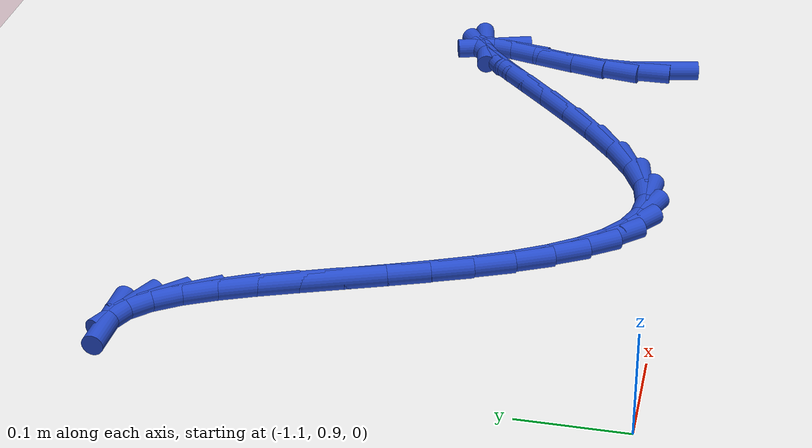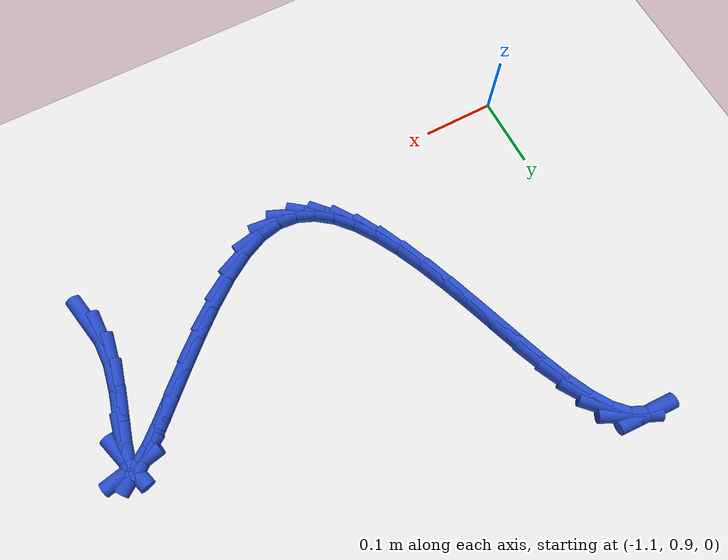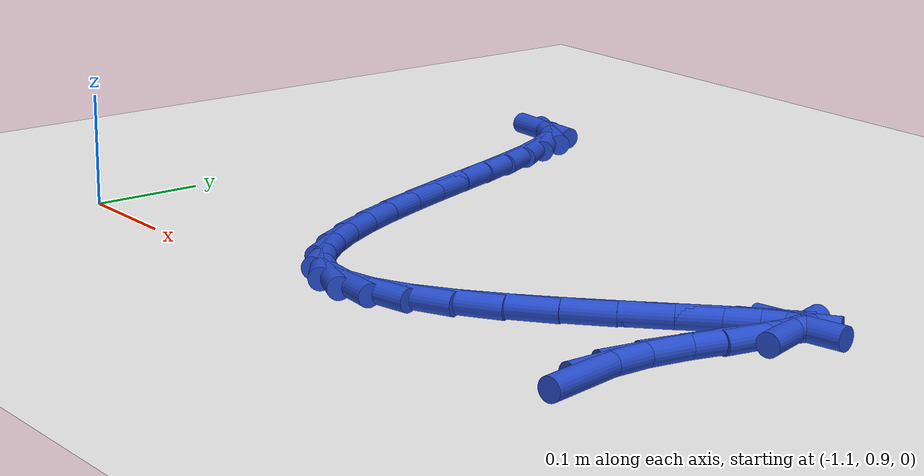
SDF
<sdf version="1.6">
 <world name="default">
  <model name="ground_plane">
   <static>1</static>
   <link name="link">
    <collision name="collision">
     <geometry><plane><normal>0 0 1</normal><size>100 100</size></plane></geometry>
     <surface><friction><ode><mu>100</mu><mu2>50</mu2></ode></friction></surface>
    </collision>
    <visual name="visual">
     <cast_shadows>0</cast_shadows>
     <geometry><plane><normal>0 0 1</normal><size>100 100</size></plane></geometry>
     <material>
      <script><uri>file://media/materials/scripts/gazebo.material</uri><name>Gazebo/WhiteGlow</name></script>
     </material>
    </visual>
   </link>
  </model>
  <model name="line">
   <link name="link_37">
    <pose>-0.4770495984323062 0.9430570257914278 0.01 0 1.57 -1.364512986633252</pose>
    <collision name="collision">
     <geometry><cylinder><radius>0.01</radius><length>0.08</length></cylinder></geometry>
    </collision>
    <visual name="visual">
     <material>
      <script><name>Gazebo/Blue</name><uri>file://media/materials/scripts/gazebo.material</uri></script>
     </material>
     <geometry><cylinder><radius>0.01</radius><length>0.08</length></cylinder></geometry>
    </visual>
   </link>
   <link name="link_38">
    <pose>-0.4831788865735521 0.9723473262441882 0.01 0 1.57 -1.5704683569661182</pose>
    <collision name="collision">
     <geometry><cylinder><radius>0.01</radius><length>0.08</length></cylinder></geometry>
    </collision>
    <visual name="visual">
     <material>
      <script><name>Gazebo/Blue</name><uri>file://media/materials/scripts/gazebo.material</uri></script>
     </material>
     <geometry><cylinder><radius>0.01</radius><length>0.08</length></cylinder></geometry>
    </visual>
   </link>
   <link name="link_39">
    <pose>-0.4831896345588908 1.005118587531682 0.01 0 1.57 1.4116530401254945</pose>
    <collision name="collision">
     <geometry><cylinder><radius>0.01</radius><length>0.08</length></cylinder></geometry>
    </collision>
    <visual name="visual">
     <material>
      <script><name>Gazebo/Blue</name><uri>file://media/materials/scripts/gazebo.material</uri></script>
     </material>
     <geometry><cylinder><radius>0.01</radius><length>0.08</length></cylinder></geometry>
    </visual>
   </link>
   <link name="link_40">
    <pose>-0.47749367470440174 1.0406073108091247 0.01 0 1.57 1.33227171243182</pose>
    <collision name="collision">
     <geometry><cylinder><radius>0.01</radius><length>0.08</length></cylinder></geometry>
    </collision>
    <visual name="visual">
     <material>
      <script><name>Gazebo/Blue</name><uri>file://media/materials/scripts/gazebo.material</uri></script>
     </material>
     <geometry><cylinder><radius>0.01</radius><length>0.08</length></cylinder></geometry>
    </visual>
   </link>
   <link name="link_41">
    <pose>-0.46905250509312907 1.0753227014718703 0.01 0 1.57 1.3153170209641836</pose>
    <collision name="collision">
     <geometry><cylinder><radius>0.01</radius><length>0.08</length></cylinder></geometry>
    </collision>
    <visual name="visual">
     <material>
      <script><name>Gazebo/Blue</name><uri>file://media/materials/scripts/gazebo.material</uri></script>
     </material>
     <geometry><cylinder><radius>0.01</radius><length>0.08</length></cylinder></geometry>
    </visual>
   </link>
   <link name="link_42">
    <pose>-0.46120426765963307 1.1053710810578947 0.01 0 1.57 1.3904783841975357</pose>
    <collision name="collision">
     <geometry><cylinder><radius>0.01</radius><length>0.08</length></cylinder></geometry>
    </collision>
    <visual name="visual">
     <material>
      <script><name>Gazebo/Blue</name><uri>file://media/materials/scripts/gazebo.material</uri></script>
     </material>
     <geometry><cylinder><radius>0.01</radius><length>0.08</length></cylinder></geometry>
    </visual>
   </link>
   <link name="link_43">
    <pose>-0.4572871043384739 1.1268587711051745 0.01 0 1.57 -1.2693166915440863</pose>
    <collision name="collision">
     <geometry><cylinder><radius>0.01</radius><length>0.08</length></cylinder></geometry>
    </collision>
    <visual name="visual">
     <material>
      <script><name>Gazebo/Blue</name><uri>file://media/materials/scripts/gazebo.material</uri></script>
     </material>
     <geometry><cylinder><radius>0.01</radius><length>0.08</length></cylinder></geometry>
    </visual>
   </link>
   <link name="link_44">
    <pose>-0.4602591427514989 1.1364164489141484 0.01 0 1.57 0.19368764389536142</pose>
    <collision name="collision">
     <geometry><cylinder><radius>0.01</radius><length>0.08</length></cylinder></geometry>
    </collision>
    <visual name="visual">
     <material>
      <script><name>Gazebo/Blue</name><uri>file://media/materials/scripts/gazebo.material</uri></script>
     </material>
     <geometry><cylinder><radius>0.01</radius><length>0.08</length></cylinder></geometry>
    </visual>
   </link>
   <link name="link_45">
    <pose>-0.47035212502581486 1.1344367446829082 0.01 0 1.57 0.6149706926015445</pose>
    <collision name="collision">
     <geometry><cylinder><radius>0.01</radius><length>0.08</length></cylinder></geometry>
    </collision>
    <visual name="visual">
     <material>
      <script><name>Gazebo/Blue</name><uri>file://media/materials/scripts/gazebo.material</uri></script>
     </material>
     <geometry><cylinder><radius>0.01</radius><length>0.08</length></cylinder></geometry>
    </visual>
   </link>
   <link name="link_46">
    <pose>-0.4866072434327489 1.1229550469386202 0.01 0 1.57 0.7232912617935959</pose>
    <collision name="collision">
     <geometry><cylinder><radius>0.01</radius><length>0.08</length></cylinder></geometry>
    </collision>
    <visual name="visual">
     <material>
      <script><name>Gazebo/Blue</name><uri>file://media/materials/scripts/gazebo.material</uri></script>
     </material>
     <geometry><cylinder><radius>0.01</radius><length>0.08</length></cylinder></geometry>
    </visual>
   </link>
   <link name="link_47">
    <pose>-0.5080607159211911 1.1040136079358085 0.01 0 1.57 0.7588470234525712</pose>
    <collision name="collision">
     <geometry><cylinder><radius>0.01</radius><length>0.08</length></cylinder></geometry>
    </collision>
    <visual name="visual">
     <material>
      <script><name>Gazebo/Blue</name><uri>file://media/materials/scripts/gazebo.material</uri></script>
     </material>
     <geometry><cylinder><radius>0.01</radius><length>0.08</length></cylinder></geometry>
    </visual>
   </link>
   <link name="link_48">
    <pose>-0.5337487604400319 1.0796546799289954 0.01 0 1.57 0.7637997417366655</pose>
    <collision name="collision">
     <geometry><cylinder><radius>0.01</radius><length>0.08</length></cylinder></geometry>
    </collision>
    <visual name="visual">
     <material>
      <script><name>Gazebo/Blue</name><uri>file://media/materials/scripts/gazebo.material</uri></script>
     </material>
     <geometry><cylinder><radius>0.01</radius><length>0.08</length></cylinder></geometry>
    </visual>
   </link>
   <link name="link_49">
    <pose>-0.5627075949381609 1.0519205151727054 0.01 0 1.57 0.7489716486077683</pose>
    <collision name="collision">
     <geometry><cylinder><radius>0.01</radius><length>0.08</length></cylinder></geometry>
    </collision>
    <visual name="visual">
     <material>
      <script><name>Gazebo/Blue</name><uri>file://media/materials/scripts/gazebo.material</uri></script>
     </material>
     <geometry><cylinder><radius>0.01</radius><length>0.08</length></cylinder></geometry>
    </visual>
   </link>
   <link name="link_50">
    <pose>-0.5939734373644687 1.0228533659214614 0.01 0 1.57 0.7157814802865851</pose>
    <collision name="collision">
     <geometry><cylinder><radius>0.01</radius><length>0.08</length></cylinder></geometry>
    </collision>
    <visual name="visual">
     <material>
      <script><name>Gazebo/Blue</name><uri>file://media/materials/scripts/gazebo.material</uri></script>
     </material>
     <geometry><cylinder><radius>0.01</radius><length>0.08</length></cylinder></geometry>
    </visual>
   </link>
   <link name="link_51">
    <pose>-0.6265825056678449 0.9944954844297867 0.01 0 1.57 0.6600721721788052</pose>
    <collision name="collision">
     <geometry><cylinder><radius>0.01</radius><length>0.08</length></cylinder></geometry>
    </collision>
    <visual name="visual">
     <material>
      <script><name>Gazebo/Blue</name><uri>file://media/materials/scripts/gazebo.material</uri></script>
     </material>
     <geometry><cylinder><radius>0.01</radius><length>0.08</length></cylinder></geometry>
    </visual>
   </link>
   <link name="link_52">
    <pose>-0.6595710177971802 0.9688891229522046 0.01 0 1.57 0.5709297922830731</pose>
    <collision name="collision">
     <geometry><cylinder><radius>0.01</radius><length>0.08</length></cylinder></geometry>
    </collision>
    <visual name="visual">
     <material>
      <script><name>Gazebo/Blue</name><uri>file://media/materials/scripts/gazebo.material</uri></script>
     </material>
     <geometry><cylinder><radius>0.01</radius><length>0.08</length></cylinder></geometry>
    </visual>
   </link>
   <link name="link_53">
    <pose>-0.6919751917013639 0.9480765337432386 0.01 0 1.57 0.4253129144393534</pose>
    <collision name="collision">
     <geometry><cylinder><radius>0.01</radius><length>0.08</length></cylinder></geometry>
    </collision>
    <visual name="visual">
     <material>
      <script><name>Gazebo/Blue</name><uri>file://media/materials/scripts/gazebo.material</uri></script>
     </material>
     <geometry><cylinder><radius>0.01</radius><length>0.08</length></cylinder></geometry>
    </visual>
   </link>
   <link name="link_54">
    <pose>-0.7228312453292871 0.9340999690574125 0.01 0 1.57 0.19012810390382626</pose>
    <collision name="collision">
     <geometry><cylinder><radius>0.01</radius><length>0.08</length></cylinder></geometry>
    </collision>
    <visual name="visual">
     <material>
      <script><name>Gazebo/Blue</name><uri>file://media/materials/scripts/gazebo.material</uri></script>
     </material>
     <geometry><cylinder><radius>0.01</radius><length>0.08</length></cylinder></geometry>
    </visual>
   </link>
   <link name="link_55">
    <pose>-0.7513303389363087 0.928615242032474 0.01 0 1.57 -0.10456611202650012</pose>
    <collision name="collision">
     <geometry><cylinder><radius>0.01</radius><length>0.08</length></cylinder></geometry>
    </collision>
    <visual name="visual">
     <material>
      <script><name>Gazebo/Blue</name><uri>file://media/materials/scripts/gazebo.material</uri></script>
     </material>
     <geometry><cylinder><radius>0.01</radius><length>0.08</length></cylinder></geometry>
    </visual>
   </link>
   <link name="link_56">
    <pose>-0.7774347744485441 0.9313548737567285 0.01 0 1.57 -0.3996345137070338</pose>
    <collision name="collision">
     <geometry><cylinder><radius>0.01</radius><length>0.08</length></cylinder></geometry>
    </collision>
    <visual name="visual">
     <material>
      <script><name>Gazebo/Blue</name><uri>file://media/materials/scripts/gazebo.material</uri></script>
     </material>
     <geometry><cylinder><radius>0.01</radius><length>0.08</length></cylinder></geometry>
    </visual>
   </link>
   <link name="link_57">
    <pose>-0.8013462937270182 0.9414542020244201 0.01 0 1.57 -0.647978246161115</pose>
    <collision name="collision">
     <geometry><cylinder><radius>0.01</radius><length>0.08</length></cylinder></geometry>
    </collision>
    <visual name="visual">
     <material>
      <script><name>Gazebo/Blue</name><uri>file://media/materials/scripts/gazebo.material</uri></script>
     </material>
     <geometry><cylinder><radius>0.01</radius><length>0.08</length></cylinder></geometry>
    </visual>
   </link>
   <link name="link_58">
    <pose>-0.823266713033428 0.9580483790682687 0.01 0 1.57 -0.834774287737094</pose>
    <collision name="collision">
     <geometry><cylinder><radius>0.01</radius><length>0.08</length></cylinder></geometry>
    </collision>
    <visual name="visual">
     <material>
      <script><name>Gazebo/Blue</name><uri>file://media/materials/scripts/gazebo.material</uri></script>
     </material>
     <geometry><cylinder><radius>0.01</radius><length>0.08</length></cylinder></geometry>
    </visual>
   </link>
   <link name="link_59">
    <pose>-0.8433978486294715 0.9802725571209945 0.01 0 1.57 -0.968798302903361</pose>
    <collision name="collision">
     <geometry><cylinder><radius>0.01</radius><length>0.08</length></cylinder></geometry>
    </collision>
    <visual name="visual">
     <material>
      <script><name>Gazebo/Blue</name><uri>file://media/materials/scripts/gazebo.material</uri></script>
     </material>
     <geometry><cylinder><radius>0.01</radius><length>0.08</length></cylinder></geometry>
    </visual>
   </link>
   <link name="link_60">
    <pose>-0.8619415167768463 1.0072618884153177 0.01 0 1.57 -1.063769376628445</pose>
    <collision name="collision">
     <geometry><cylinder><radius>0.01</radius><length>0.08</length></cylinder></geometry>
    </collision>
    <visual name="visual">
     <material>
      <script><name>Gazebo/Blue</name><uri>file://media/materials/scripts/gazebo.material</uri></script>
     </material>
     <geometry><cylinder><radius>0.01</radius><length>0.08</length></cylinder></geometry>
    </visual>
   </link>
   <link name="link_61">
    <pose>-0.87909953373725 1.038151525183959 0.01 0 1.57 -1.1307261581408423</pose>
    <collision name="collision">
     <geometry><cylinder><radius>0.01</radius><length>0.08</length></cylinder></geometry>
    </collision>
    <visual name="visual">
     <material>
      <script><name>Gazebo/Blue</name><uri>file://media/materials/scripts/gazebo.material</uri></script>
     </material>
     <geometry><cylinder><radius>0.01</radius><length>0.08</length></cylinder></geometry>
    </visual>
   </link>
   <link name="link_62">
    <pose>-0.8950737157723798 1.072076619659638 0.01 0 1.57 -1.1771320540357002</pose>
    <collision name="collision">
     <geometry><cylinder><radius>0.01</radius><length>0.08</length></cylinder></geometry>
    </collision>
    <visual name="visual">
     <material>
      <script><name>Gazebo/Blue</name><uri>file://media/materials/scripts/gazebo.material</uri></script>
     </material>
     <geometry><cylinder><radius>0.01</radius><length>0.08</length></cylinder></geometry>
    </visual>
   </link>
   <link name="link_63">
    <pose>-0.910065879143934 1.1081723240750758 0.01 0 1.57 -1.2076632492249755</pose>
    <collision name="collision">
     <geometry><cylinder><radius>0.01</radius><length>0.08</length></cylinder></geometry>
    </collision>
    <visual name="visual">
     <material>
      <script><name>Gazebo/Blue</name><uri>file://media/materials/scripts/gazebo.material</uri></script>
     </material>
     <geometry><cylinder><radius>0.01</radius><length>0.08</length></cylinder></geometry>
    </visual>
   </link>
   <link name="link_64">
    <pose>-0.9242778401136098 1.145573790662992 0.01 0 1.57 -1.224999399807576</pose>
    <collision name="collision">
     <geometry><cylinder><radius>0.01</radius><length>0.08</length></cylinder></geometry>
    </collision>
    <visual name="visual">
     <material>
      <script><name>Gazebo/Blue</name><uri>file://media/materials/scripts/gazebo.material</uri></script>
     </material>
     <geometry><cylinder><radius>0.01</radius><length>0.08</length></cylinder></geometry>
    </visual>
   </link>
   <link name="link_65">
    <pose>-0.9379114149431049 1.183416171656107 0.01 0 1.57 -1.2302707892728297</pose>
    <collision name="collision">
     <geometry><cylinder><radius>0.01</radius><length>0.08</length></cylinder></geometry>
    </collision>
    <visual name="visual">
     <material>
      <script><name>Gazebo/Blue</name><uri>file://media/materials/scripts/gazebo.material</uri></script>
     </material>
     <geometry><cylinder><radius>0.01</radius><length>0.08</length></cylinder></geometry>
    </visual>
   </link>
   <link name="link_66">
    <pose>-0.951169213852165 1.220832882188781 0.01 0 1.57 -1.2201918504669882</pose>
    <collision name="collision">
     <geometry><cylinder><radius>0.01</radius><length>0.08</length></cylinder></geometry>
    </collision>
    <visual name="visual">
     <material>
      <script><name>Gazebo/Blue</name><uri>file://media/materials/scripts/gazebo.material</uri></script>
     </material>
     <geometry><cylinder><radius>0.01</radius><length>0.08</length></cylinder></geometry>
    </visual>
   </link>
   <link name="link_67">
    <pose>-0.9643241601935064 1.2568034995089359 0.01 0 1.57 -1.1862270527395904</pose>
    <collision name="collision">
     <geometry><cylinder><radius>0.01</radius><length>0.08</length></cylinder></geometry>
    </collision>
    <visual name="visual">
     <material>
      <script><name>Gazebo/Blue</name><uri>file://media/materials/scripts/gazebo.material</uri></script>
     </material>
     <geometry><cylinder><radius>0.01</radius><length>0.08</length></cylinder></geometry>
    </visual>
   </link>
   <link name="link_68">
    <pose>-0.977773699429289 1.2900351593258794 0.01 0 1.57 -1.1190553558282887</pose>
    <collision name="collision">
     <geometry><cylinder><radius>0.01</radius><length>0.08</length></cylinder></geometry>
    </collision>
    <visual name="visual">
     <material>
      <script><name>Gazebo/Blue</name><uri>file://media/materials/scripts/gazebo.material</uri></script>
     </material>
     <geometry><cylinder><radius>0.01</radius><length>0.08</length></cylinder></geometry>
    </visual>
   </link>
   <link name="link_69">
    <pose>-0.9919280357944591 1.319207082469351 0.01 0 1.57 -1.0002068482792532</pose>
    <collision name="collision">
     <geometry><cylinder><radius>0.01</radius><length>0.08</length></cylinder></geometry>
    </collision>
    <visual name="visual">
     <material>
      <script><name>Gazebo/Blue</name><uri>file://media/materials/scripts/gazebo.material</uri></script>
     </material>
     <geometry><cylinder><radius>0.01</radius><length>0.08</length></cylinder></geometry>
    </visual>
   </link>
   <link name="link_70">
    <pose>-1.0071973735239628 1.342998489769089 0.01 0 1.57 -0.7941207387226378</pose>
    <collision name="collision">
     <geometry><cylinder><radius>0.01</radius><length>0.08</length></cylinder></geometry>
    </collision>
    <visual name="visual">
     <material>
      <script><name>Gazebo/Blue</name><uri>file://media/materials/scripts/gazebo.material</uri></script>
     </material>
     <geometry><cylinder><radius>0.01</radius><length>0.08</length></cylinder></geometry>
    </visual>
   </link>
   <link name="link_71">
    <pose>-1.0239919168527458 1.3600886020548317 0.01 0 1.57 -0.4524726296850768</pose>
    <collision name="collision">
     <geometry><cylinder><radius>0.01</radius><length>0.08</length></cylinder></geometry>
    </collision>
    <visual name="visual">
     <material>
      <script><name>Gazebo/Blue</name><uri>file://media/materials/scripts/gazebo.material</uri></script>
     </material>
     <geometry><cylinder><radius>0.01</radius><length>0.08</length></cylinder></geometry>
    </visual>
   </link>
   <link name="link_72">
    <pose>-1.0427144453390609 1.3691897788714027 0.01 0 1.57 -0.04481095048637973</pose>
    <collision name="collision">
     <geometry><cylinder><radius>0.01</radius><length>0.08</length></cylinder></geometry>
    </collision>
    <visual name="visual">
     <material>
      <script><name>Gazebo/Blue</name><uri>file://media/materials/scripts/gazebo.material</uri></script>
     </material>
     <geometry><cylinder><radius>0.01</radius><length>0.08</length></cylinder></geometry>
    </visual>
   </link>
  </model>
 </world>
</sdf>
